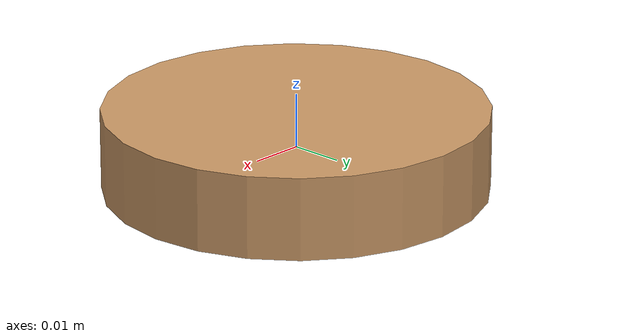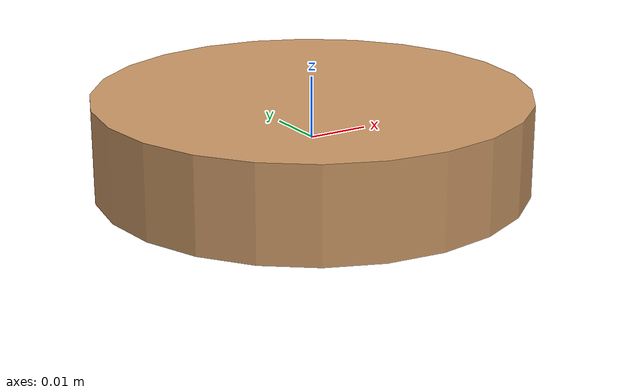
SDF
<?xml version='1.0' encoding='utf-8'?>
<sdf version="1.6">
  <model name="bread">
    <static>false</static>

    <link name="link">
      <pose>0 0 0 0 0 0</pose>

      <inertial>
        <mass>2.88633825</mass>
        <inertia>
          <ixx>0.00093806</ixx>
          <iyy>0.00093806</iyy>
          <izz>0.00176788</izz>
          <ixy>0.00000000</ixy>
          <ixz>0.00000000</ixz>
          <iyz>0.00000000</iyz>
        </inertia>
      </inertial>

      <collision name="collision">
        <geometry>
          <cylinder>
            <radius>0.035</radius>
            <length>0.015</length>
          </cylinder>
        </geometry>
        <surface>
          <contact>
            <collide_without_contact>false</collide_without_contact>
            <ode>
              <max_vel>0</max_vel>
              <min_depth>0.001</min_depth>
            </ode>
          </contact>
          <bounce>
            <restitution_coefficient>0.0</restitution_coefficient>
            <threshold>1.0</threshold>
          </bounce>
          <friction>
            <ode>
              <mu>1.5</mu>
              <mu2>1.5</mu2>
            </ode>
          </friction>
        </surface>
      </collision>

      <visual name="visual">
        <geometry>
          <cylinder>
            <radius>0.035</radius>
            <length>0.015</length>
          </cylinder>
        </geometry>
        <material>
          <ambient>0.8 0.6 0.4 1</ambient>
          <diffuse>0.8 0.6 0.4 1</diffuse>
          <specular>0.1 0.1 0.1 1</specular>
        </material>
      </visual>
    </link>
  </model>
</sdf>
